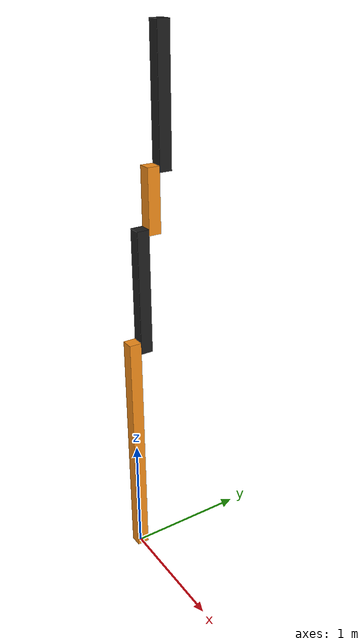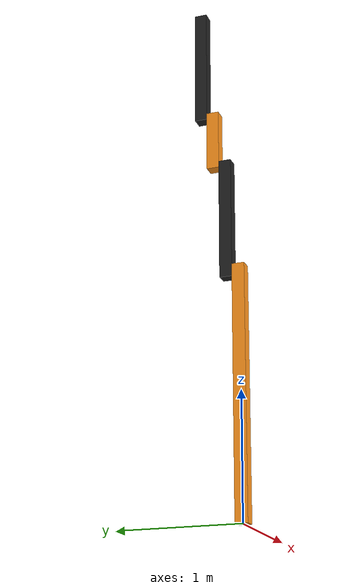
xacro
<?xml version="1.0" ?>
<robot name="mk_robot" xmlns:xacro="http://www.ros.org/wiki/xacro">
  <!--Constants for robot dimensions-->
  <xacro:property name="PI" value="3.1415926535897931"/>
  <xacro:property name="density" value="100.0"/>
  <xacro:property name="axel_offset" value="0.05"/>
  <xacro:include filename="$(find robot_generator)/urdf/mk_root/mk_robot.gazebo"/>
  <xacro:include filename="$(find robot_generator)/urdf/materials.xacro"/>
  <!--World link for fixing robot to Gazebo frame-->
  <link name="world"/>
  <joint name="joint0" type="fixed">
    <parent link="world"/>
    <child link="link1"/>
  </joint>
  <!--Start of generated robot-->
  <link name="link1">
    <collision>
      <origin rpy="0 0 0" xyz="0 0 1"/>
      <geometry>
        <box size="0.1 0.1 2"/>
      </geometry>
    </collision>
    <visual>
      <origin rpy="0 0 0" xyz="0 0 1"/>
      <geometry>
        <box size="0.1 0.1 2"/>
      </geometry>
      <material name="orange"/>
    </visual>
    <inertial>
      <origin rpy="0 0 0" xyz="0 0 1"/>
      <mass value="2.0"/>
      <inertia ixx="${2.0 / 12.0 * (0.1*0.1 + 2*2)}" ixy="0.0" ixz="0.0" iyy="${2.0 / 12.0 * (2*2 + 0.1*0.1)}" iyz="0.0" izz="${2.0 / 12.0 * (0.1*0.1 + 0.1*0.1)}"/>
    </inertial>
  </link>
  <link name="link2">
    <collision>
      <origin rpy="0 0 0" xyz="0 0 ${0.5 - axel_offset}"/>
      <geometry>
        <box size="0.1 0.1 1.0"/>
      </geometry>
    </collision>
    <visual>
      <origin rpy="0 0 0" xyz="0 0 ${0.5 - axel_offset}"/>
      <geometry>
        <box size="0.1 0.1 1.0"/>
      </geometry>
      <material name="black"/>
    </visual>
    <inertial>
      <origin rpy="0 0 0" xyz="0 0 ${0.5 - axel_offset}"/>
      <mass value="1.0"/>
      <inertia ixx="${1.0 / 12.0 * (0.1*0.1 + 1.0*1.0)}" ixy="0.0" ixz="0.0" iyy="${1.0 / 12.0 * (1.0*1.0 + 0.1*0.1)}" iyz="0.0" izz="${1.0 / 12.0 * (0.1*0.1 + 0.1*0.1)}"/>
    </inertial>
  </link>
  <joint name="joint1" type="continuous">
    <parent link="link1"/>
    <child link="link2"/>
    <origin rpy="0 0 0" xyz="0 0.1 ${2 - axel_offset}"/>
    <axis xyz="0 1 0"/>
    <dynamics damping="0.7"/>
  </joint>
  <transmission name="tran1">
    <type>transmission_interface/SimpleTransmission</type>
    <joint name="joint1">
      <hardwareInterface>hardware_interface/EffortJointInterface</hardwareInterface>
    </joint>
    <actuator name="motor1">
      <hardwareInterface>hardware_interface/EffortJointInterface</hardwareInterface>
      <mechanicalReduction>1</mechanicalReduction>
    </actuator>
  </transmission>
  <link name="link3">
    <collision>
      <origin rpy="0 0 0" xyz="0 0 ${0.25 - axel_offset}"/>
      <geometry>
        <box size="0.1 0.1 0.5"/>
      </geometry>
    </collision>
    <visual>
      <origin rpy="0 0 0" xyz="0 0 ${0.25 - axel_offset}"/>
      <geometry>
        <box size="0.1 0.1 0.5"/>
      </geometry>
      <material name="orange"/>
    </visual>
    <inertial>
      <origin rpy="0 0 0" xyz="0 0 ${0.25 - axel_offset}"/>
      <mass value="0.5"/>
      <inertia ixx="${0.5 / 12.0 * (0.1*0.1 + 0.5*0.5)}" ixy="0.0" ixz="0.0" iyy="${0.5 / 12.0 * (0.5*0.5 + 0.1*0.1)}" iyz="0.0" izz="${0.5 / 12.0 * (0.1*0.1 + 0.1*0.1)}"/>
    </inertial>
  </link>
  <joint name="joint2" type="continuous">
    <parent link="link2"/>
    <child link="link3"/>
    <origin rpy="0 0 0" xyz="0 0.1 ${1.0 - axel_offset}"/>
    <axis xyz="0 1 0"/>
    <dynamics damping="0.7"/>
  </joint>
  <transmission name="tran2">
    <type>transmission_interface/SimpleTransmission</type>
    <joint name="joint2">
      <hardwareInterface>hardware_interface/EffortJointInterface</hardwareInterface>
    </joint>
    <actuator name="motor2">
      <hardwareInterface>hardware_interface/EffortJointInterface</hardwareInterface>
      <mechanicalReduction>1</mechanicalReduction>
    </actuator>
  </transmission>
  <link name="link4">
    <collision>
      <origin rpy="0 0 0" xyz="0 0 ${0.5 - axel_offset}"/>
      <geometry>
        <box size="0.1 0.1 1.0"/>
      </geometry>
    </collision>
    <visual>
      <origin rpy="0 0 0" xyz="0 0 ${0.5 - axel_offset}"/>
      <geometry>
        <box size="0.1 0.1 1.0"/>
      </geometry>
      <material name="black"/>
    </visual>
    <inertial>
      <origin rpy="0 0 0" xyz="0 0 ${0.5 - axel_offset}"/>
      <mass value="1.0"/>
      <inertia ixx="${1.0 / 12.0 * (0.1*0.1 + 1.0*1.0)}" ixy="0.0" ixz="0.0" iyy="${1.0 / 12.0 * (1.0*1.0 + 0.1*0.1)}" iyz="0.0" izz="${1.0 / 12.0 * (0.1*0.1 + 0.1*0.1)}"/>
    </inertial>
  </link>
  <joint name="joint3" type="continuous">
    <parent link="link3"/>
    <child link="link4"/>
    <origin rpy="0 0 0" xyz="0 0.1 ${0.5 - axel_offset}"/>
    <axis xyz="0 1 0"/>
    <dynamics damping="0.7"/>
  </joint>
  <transmission name="tran3">
    <type>transmission_interface/SimpleTransmission</type>
    <joint name="joint3">
      <hardwareInterface>hardware_interface/EffortJointInterface</hardwareInterface>
    </joint>
    <actuator name="motor3">
      <hardwareInterface>hardware_interface/EffortJointInterface</hardwareInterface>
      <mechanicalReduction>1</mechanicalReduction>
    </actuator>
  </transmission>
</robot>
